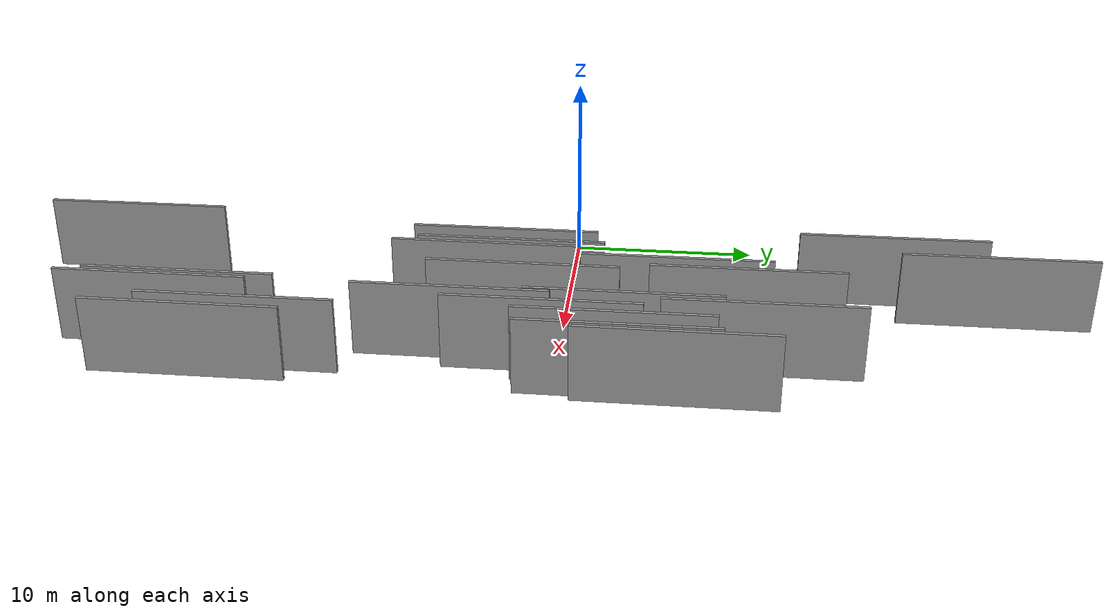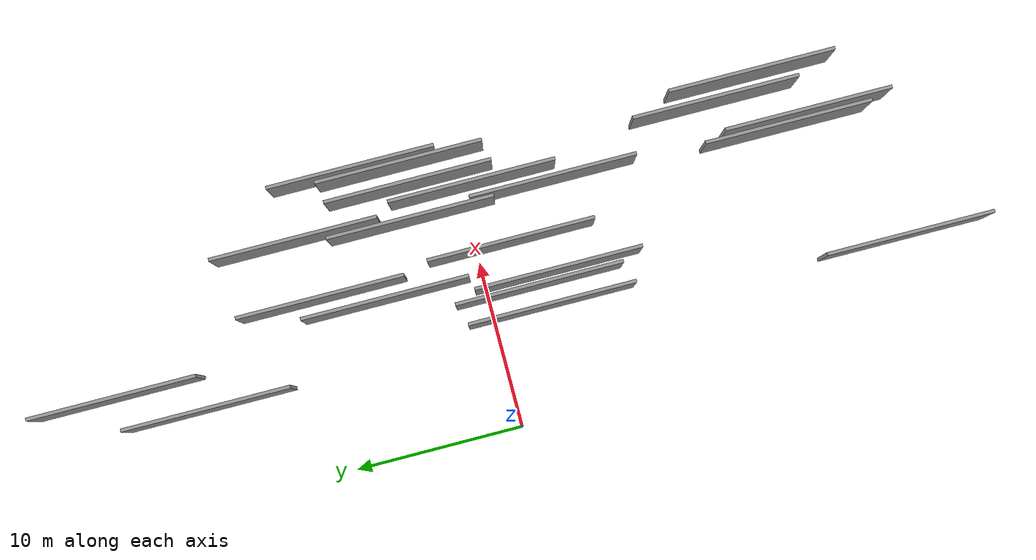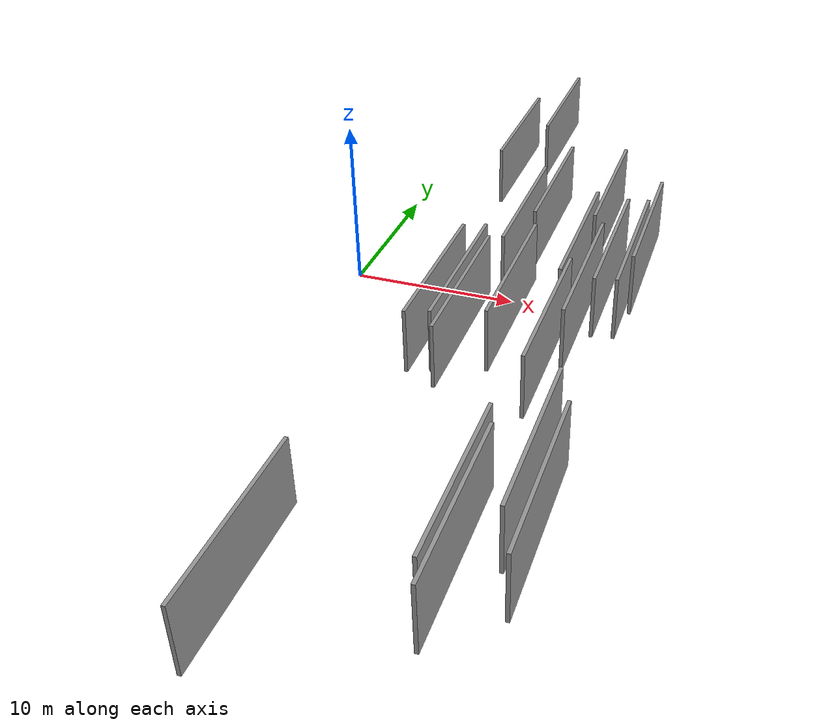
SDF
<sdf version="1.6">
 <world name="default">
  <scene>
   <sky><clouds><speed>12</speed></clouds></sky>
   <ambient>0.4 0.4 0.4 1</ambient>
   <background>0.7 0.7 0.7 1</background>
   <shadows>1</shadows>
  </scene>
  <gravity>0 0 -9.8066</gravity>
  <magnetic_field>6e-06 2.3e-05 -4.2e-05</magnetic_field>
  <physics default="0" name="default_physics" type="ode">
   <ode>
    <solver>
     <type>quick</type>
     <iters>10</iters>
     <sor>1.0</sor>
     <use_dynamic_moi_rescaling>0</use_dynamic_moi_rescaling>
    </solver>
    <constraints>
     <cfm>0</cfm>
     <erp>0.2</erp>
     <contact_max_correcting_vel>100</contact_max_correcting_vel>
     <contact_surface_layer>0.001</contact_surface_layer>
    </constraints>
   </ode>
   <max_step_size>0.004</max_step_size>
   <real_time_factor>1</real_time_factor>
   <real_time_update_rate>250</real_time_update_rate>
  </physics>
  <light name="sun" type="directional">
   <pose>0 0 10 0 0 0</pose>
   <diffuse>0.8 0.8 0.8 1</diffuse>
   <specular>0.2 0.2 0.2 1</specular>
   <attenuation>
    <range>1000</range>
    <constant>0.9</constant>
    <linear>0.01</linear>
    <quadratic>0.001</quadratic>
   </attenuation>
   <direction>-0.5 0.1 -0.9</direction>
  </light>
  <model name="grey_wall_1">
   <static>1</static>
   <pose>16.9923 5.8880 0.0 0.000000 0.000000 1.570796</pose>
   <link name="link">
    <pose>0 0 2.00 0 0 0</pose>
    <collision name="collision"><geometry><box><size>10.00 0.2 4.00</size></box></geometry></collision>
    <visual name="visual">
     <cast_shadows>0</cast_shadows>
     <geometry><box><size>10.00 0.2 4.00</size></box></geometry>
     <material>
      <script>
       <uri>model://grey_wall/materials/scripts</uri>
       <uri>model://grey_wall/materials/textures</uri>
       <name>vrc/grey_wall</name>
      </script>
     </material>
    </visual>
   </link>
  </model>
  <model name="grey_wall_2">
   <static>1</static>
   <pose>6.4187 -3.4611 0.0 0.000000 0.000000 1.570796</pose>
   <link name="link">
    <pose>0 0 2.00 0 0 0</pose>
    <collision name="collision"><geometry><box><size>10.00 0.2 4.00</size></box></geometry></collision>
    <visual name="visual">
     <cast_shadows>0</cast_shadows>
     <geometry><box><size>10.00 0.2 4.00</size></box></geometry>
     <material>
      <script>
       <uri>model://grey_wall/materials/scripts</uri>
       <uri>model://grey_wall/materials/textures</uri>
       <name>vrc/grey_wall</name>
      </script>
     </material>
    </visual>
   </link>
  </model>
  <model name="grey_wall_3">
   <static>1</static>
   <pose>13.2913 3.2474 0.0 0.000000 0.000000 1.570796</pose>
   <link name="link">
    <pose>0 0 2.00 0 0 0</pose>
    <collision name="collision"><geometry><box><size>10.00 0.2 4.00</size></box></geometry></collision>
    <visual name="visual">
     <cast_shadows>0</cast_shadows>
     <geometry><box><size>10.00 0.2 4.00</size></box></geometry>
     <material>
      <script>
       <uri>model://grey_wall/materials/scripts</uri>
       <uri>model://grey_wall/materials/textures</uri>
       <name>vrc/grey_wall</name>
      </script>
     </material>
    </visual>
   </link>
  </model>
  <model name="grey_wall_4">
   <static>1</static>
   <pose>9.1368 5.7983 0.0 0.000000 0.000000 1.570796</pose>
   <link name="link">
    <pose>0 0 2.00 0 0 0</pose>
    <collision name="collision"><geometry><box><size>10.00 0.2 4.00</size></box></geometry></collision>
    <visual name="visual">
     <cast_shadows>0</cast_shadows>
     <geometry><box><size>10.00 0.2 4.00</size></box></geometry>
     <material>
      <script>
       <uri>model://grey_wall/materials/scripts</uri>
       <uri>model://grey_wall/materials/textures</uri>
       <name>vrc/grey_wall</name>
      </script>
     </material>
    </visual>
   </link>
  </model>
  <model name="grey_wall_5">
   <static>1</static>
   <pose>5.5340 17.2920 0.0 0.000000 0.000000 1.570796</pose>
   <link name="link">
    <pose>0 0 2.00 0 0 0</pose>
    <collision name="collision"><geometry><box><size>10.00 0.2 4.00</size></box></geometry></collision>
    <visual name="visual">
     <cast_shadows>0</cast_shadows>
     <geometry><box><size>10.00 0.2 4.00</size></box></geometry>
     <material>
      <script>
       <uri>model://grey_wall/materials/scripts</uri>
       <uri>model://grey_wall/materials/textures</uri>
       <name>vrc/grey_wall</name>
      </script>
     </material>
    </visual>
   </link>
  </model>
  <model name="grey_wall_6">
   <static>1</static>
   <pose>14.4668 -0.7148 0.0 0.000000 0.000000 1.570796</pose>
   <link name="link">
    <pose>0 0 2.00 0 0 0</pose>
    <collision name="collision"><geometry><box><size>10.00 0.2 4.00</size></box></geometry></collision>
    <visual name="visual">
     <cast_shadows>0</cast_shadows>
     <geometry><box><size>10.00 0.2 4.00</size></box></geometry>
     <material>
      <script>
       <uri>model://grey_wall/materials/scripts</uri>
       <uri>model://grey_wall/materials/textures</uri>
       <name>vrc/grey_wall</name>
      </script>
     </material>
    </visual>
   </link>
  </model>
  <model name="grey_wall_7">
   <static>1</static>
   <pose>13.5707 -5.3551 0.0 0.000000 0.000000 1.570796</pose>
   <link name="link">
    <pose>0 0 2.00 0 0 0</pose>
    <collision name="collision"><geometry><box><size>10.00 0.2 4.00</size></box></geometry></collision>
    <visual name="visual">
     <cast_shadows>0</cast_shadows>
     <geometry><box><size>10.00 0.2 4.00</size></box></geometry>
     <material>
      <script>
       <uri>model://grey_wall/materials/scripts</uri>
       <uri>model://grey_wall/materials/textures</uri>
       <name>vrc/grey_wall</name>
      </script>
     </material>
    </visual>
   </link>
  </model>
  <model name="grey_wall_8">
   <static>1</static>
   <pose>13.1595 -19.3755 0.0 0.000000 0.000000 1.570796</pose>
   <link name="link">
    <pose>0 0 2.00 0 0 0</pose>
    <collision name="collision"><geometry><box><size>10.00 0.2 4.00</size></box></geometry></collision>
    <visual name="visual">
     <cast_shadows>0</cast_shadows>
     <geometry><box><size>10.00 0.2 4.00</size></box></geometry>
     <material>
      <script>
       <uri>model://grey_wall/materials/scripts</uri>
       <uri>model://grey_wall/materials/textures</uri>
       <name>vrc/grey_wall</name>
      </script>
     </material>
    </visual>
   </link>
  </model>
  <model name="grey_wall_9">
   <static>1</static>
   <pose>10.1270 9.4100 0.0 0.000000 0.000000 1.570796</pose>
   <link name="link">
    <pose>0 0 2.00 0 0 0</pose>
    <collision name="collision"><geometry><box><size>10.00 0.2 4.00</size></box></geometry></collision>
    <visual name="visual">
     <cast_shadows>0</cast_shadows>
     <geometry><box><size>10.00 0.2 4.00</size></box></geometry>
     <material>
      <script>
       <uri>model://grey_wall/materials/scripts</uri>
       <uri>model://grey_wall/materials/textures</uri>
       <name>vrc/grey_wall</name>
      </script>
     </material>
    </visual>
   </link>
  </model>
  <model name="grey_wall_10">
   <static>1</static>
   <pose>5.1361 -24.4890 0.0 0.000000 0.000000 1.570796</pose>
   <link name="link">
    <pose>0 0 2.00 0 0 0</pose>
    <collision name="collision"><geometry><box><size>10.00 0.2 4.00</size></box></geometry></collision>
    <visual name="visual">
     <cast_shadows>0</cast_shadows>
     <geometry><box><size>10.00 0.2 4.00</size></box></geometry>
     <material>
      <script>
       <uri>model://grey_wall/materials/scripts</uri>
       <uri>model://grey_wall/materials/textures</uri>
       <name>vrc/grey_wall</name>
      </script>
     </material>
    </visual>
   </link>
  </model>
  <model name="grey_wall_11">
   <static>1</static>
   <pose>7.7196 -3.0271 0.0 0.000000 0.000000 1.570796</pose>
   <link name="link">
    <pose>0 0 2.00 0 0 0</pose>
    <collision name="collision"><geometry><box><size>10.00 0.2 4.00</size></box></geometry></collision>
    <visual name="visual">
     <cast_shadows>0</cast_shadows>
     <geometry><box><size>10.00 0.2 4.00</size></box></geometry>
     <material>
      <script>
       <uri>model://grey_wall/materials/scripts</uri>
       <uri>model://grey_wall/materials/textures</uri>
       <name>vrc/grey_wall</name>
      </script>
     </material>
    </visual>
   </link>
  </model>
  <model name="grey_wall_12">
   <static>1</static>
   <pose>13.6071 -20.6901 0.0 0.000000 0.000000 1.570796</pose>
   <link name="link">
    <pose>0 0 2.00 0 0 0</pose>
    <collision name="collision"><geometry><box><size>10.00 0.2 4.00</size></box></geometry></collision>
    <visual name="visual">
     <cast_shadows>0</cast_shadows>
     <geometry><box><size>10.00 0.2 4.00</size></box></geometry>
     <material>
      <script>
       <uri>model://grey_wall/materials/scripts</uri>
       <uri>model://grey_wall/materials/textures</uri>
       <name>vrc/grey_wall</name>
      </script>
     </material>
    </visual>
   </link>
  </model>
  <model name="grey_wall_13">
   <static>1</static>
   <pose>15.6212 -15.6611 0.0 0.000000 0.000000 1.570796</pose>
   <link name="link">
    <pose>0 0 2.00 0 0 0</pose>
    <collision name="collision"><geometry><box><size>10.00 0.2 4.00</size></box></geometry></collision>
    <visual name="visual">
     <cast_shadows>0</cast_shadows>
     <geometry><box><size>10.00 0.2 4.00</size></box></geometry>
     <material>
      <script>
       <uri>model://grey_wall/materials/scripts</uri>
       <uri>model://grey_wall/materials/textures</uri>
       <name>vrc/grey_wall</name>
      </script>
     </material>
    </visual>
   </link>
  </model>
  <model name="grey_wall_14">
   <static>1</static>
   <pose>8.2997 -4.3257 0.0 0.000000 0.000000 1.570796</pose>
   <link name="link">
    <pose>0 0 2.00 0 0 0</pose>
    <collision name="collision"><geometry><box><size>10.00 0.2 4.00</size></box></geometry></collision>
    <visual name="visual">
     <cast_shadows>0</cast_shadows>
     <geometry><box><size>10.00 0.2 4.00</size></box></geometry>
     <material>
      <script>
       <uri>model://grey_wall/materials/scripts</uri>
       <uri>model://grey_wall/materials/textures</uri>
       <name>vrc/grey_wall</name>
      </script>
     </material>
    </visual>
   </link>
  </model>
  <model name="grey_wall_15">
   <static>1</static>
   <pose>16.6176 -18.0871 0.0 0.000000 0.000000 1.570796</pose>
   <link name="link">
    <pose>0 0 2.00 0 0 0</pose>
    <collision name="collision"><geometry><box><size>10.00 0.2 4.00</size></box></geometry></collision>
    <visual name="visual">
     <cast_shadows>0</cast_shadows>
     <geometry><box><size>10.00 0.2 4.00</size></box></geometry>
     <material>
      <script>
       <uri>model://grey_wall/materials/scripts</uri>
       <uri>model://grey_wall/materials/textures</uri>
       <name>vrc/grey_wall</name>
      </script>
     </material>
    </visual>
   </link>
  </model>
  <model name="grey_wall_16">
   <static>1</static>
   <pose>15.3519 2.8704 0.0 0.000000 0.000000 1.570796</pose>
   <link name="link">
    <pose>0 0 2.00 0 0 0</pose>
    <collision name="collision"><geometry><box><size>10.00 0.2 4.00</size></box></geometry></collision>
    <visual name="visual">
     <cast_shadows>0</cast_shadows>
     <geometry><box><size>10.00 0.2 4.00</size></box></geometry>
     <material>
      <script>
       <uri>model://grey_wall/materials/scripts</uri>
       <uri>model://grey_wall/materials/textures</uri>
       <name>vrc/grey_wall</name>
      </script>
     </material>
    </visual>
   </link>
  </model>
  <model name="grey_wall_17">
   <static>1</static>
   <pose>7.5009 22.3914 0.0 0.000000 0.000000 1.570796</pose>
   <link name="link">
    <pose>0 0 2.00 0 0 0</pose>
    <collision name="collision"><geometry><box><size>10.00 0.2 4.00</size></box></geometry></collision>
    <visual name="visual">
     <cast_shadows>0</cast_shadows>
     <geometry><box><size>10.00 0.2 4.00</size></box></geometry>
     <material>
      <script>
       <uri>model://grey_wall/materials/scripts</uri>
       <uri>model://grey_wall/materials/textures</uri>
       <name>vrc/grey_wall</name>
      </script>
     </material>
    </visual>
   </link>
  </model>
  <model name="grey_wall_18">
   <static>1</static>
   <pose>10.5896 -2.0782 0.0 0.000000 0.000000 1.570796</pose>
   <link name="link">
    <pose>0 0 2.00 0 0 0</pose>
    <collision name="collision"><geometry><box><size>10.00 0.2 4.00</size></box></geometry></collision>
    <visual name="visual">
     <cast_shadows>0</cast_shadows>
     <geometry><box><size>10.00 0.2 4.00</size></box></geometry>
     <material>
      <script>
       <uri>model://grey_wall/materials/scripts</uri>
       <uri>model://grey_wall/materials/textures</uri>
       <name>vrc/grey_wall</name>
      </script>
     </material>
    </visual>
   </link>
  </model>
  <model name="grey_wall_19">
   <static>1</static>
   <pose>16.5940 3.1090 0.0 0.000000 0.000000 1.570796</pose>
   <link name="link">
    <pose>0 0 2.00 0 0 0</pose>
    <collision name="collision"><geometry><box><size>10.00 0.2 4.00</size></box></geometry></collision>
    <visual name="visual">
     <cast_shadows>0</cast_shadows>
     <geometry><box><size>10.00 0.2 4.00</size></box></geometry>
     <material>
      <script>
       <uri>model://grey_wall/materials/scripts</uri>
       <uri>model://grey_wall/materials/textures</uri>
       <name>vrc/grey_wall</name>
      </script>
     </material>
    </visual>
   </link>
  </model>
  <model name="grey_wall_20">
   <static>1</static>
   <pose>13.7775 10.0868 0.0 0.000000 0.000000 1.570796</pose>
   <link name="link">
    <pose>0 0 2.00 0 0 0</pose>
    <collision name="collision"><geometry><box><size>10.00 0.2 4.00</size></box></geometry></collision>
    <visual name="visual">
     <cast_shadows>0</cast_shadows>
     <geometry><box><size>10.00 0.2 4.00</size></box></geometry>
     <material>
      <script>
       <uri>model://grey_wall/materials/scripts</uri>
       <uri>model://grey_wall/materials/textures</uri>
       <name>vrc/grey_wall</name>
      </script>
     </material>
    </visual>
   </link>
  </model>
 </world>
</sdf>
